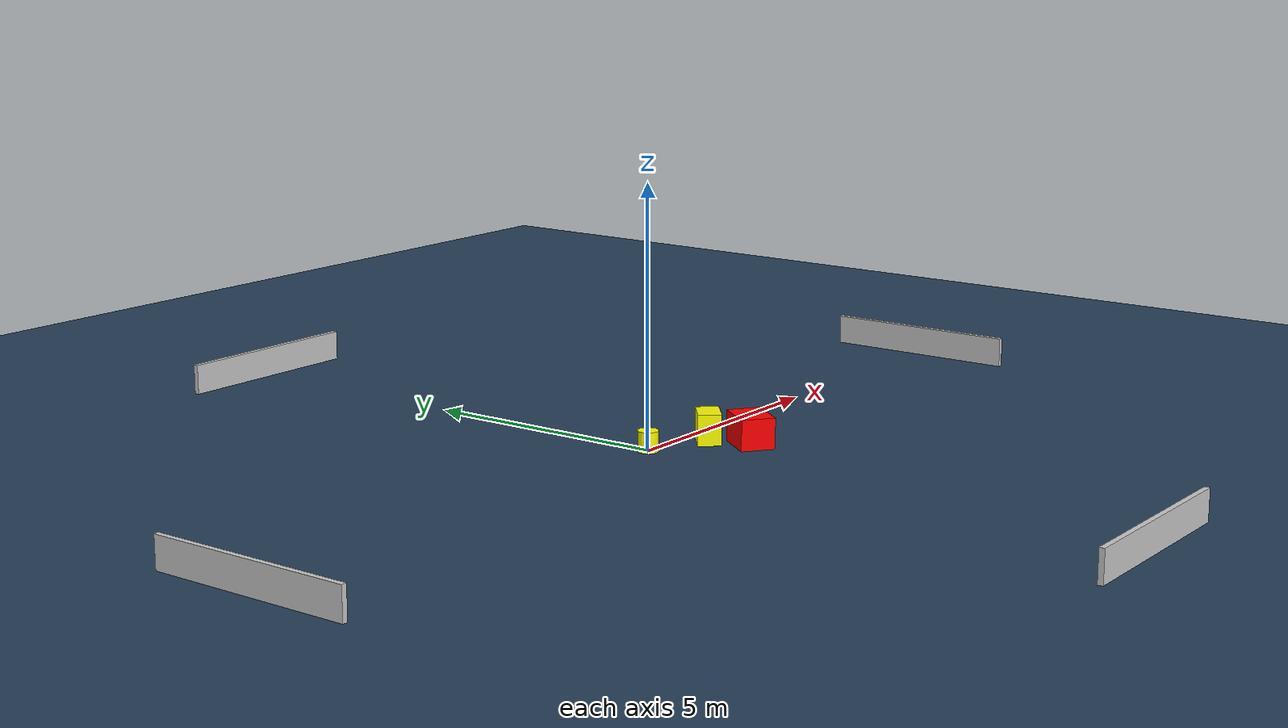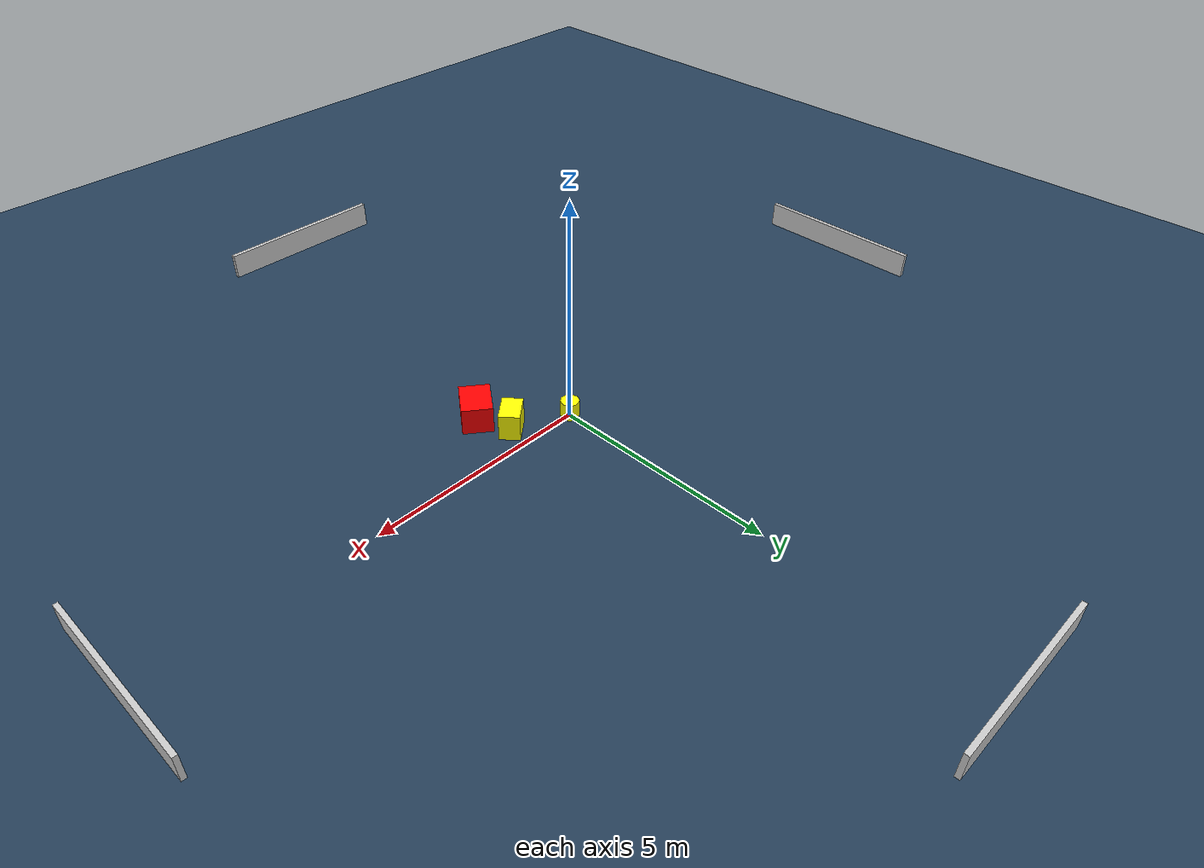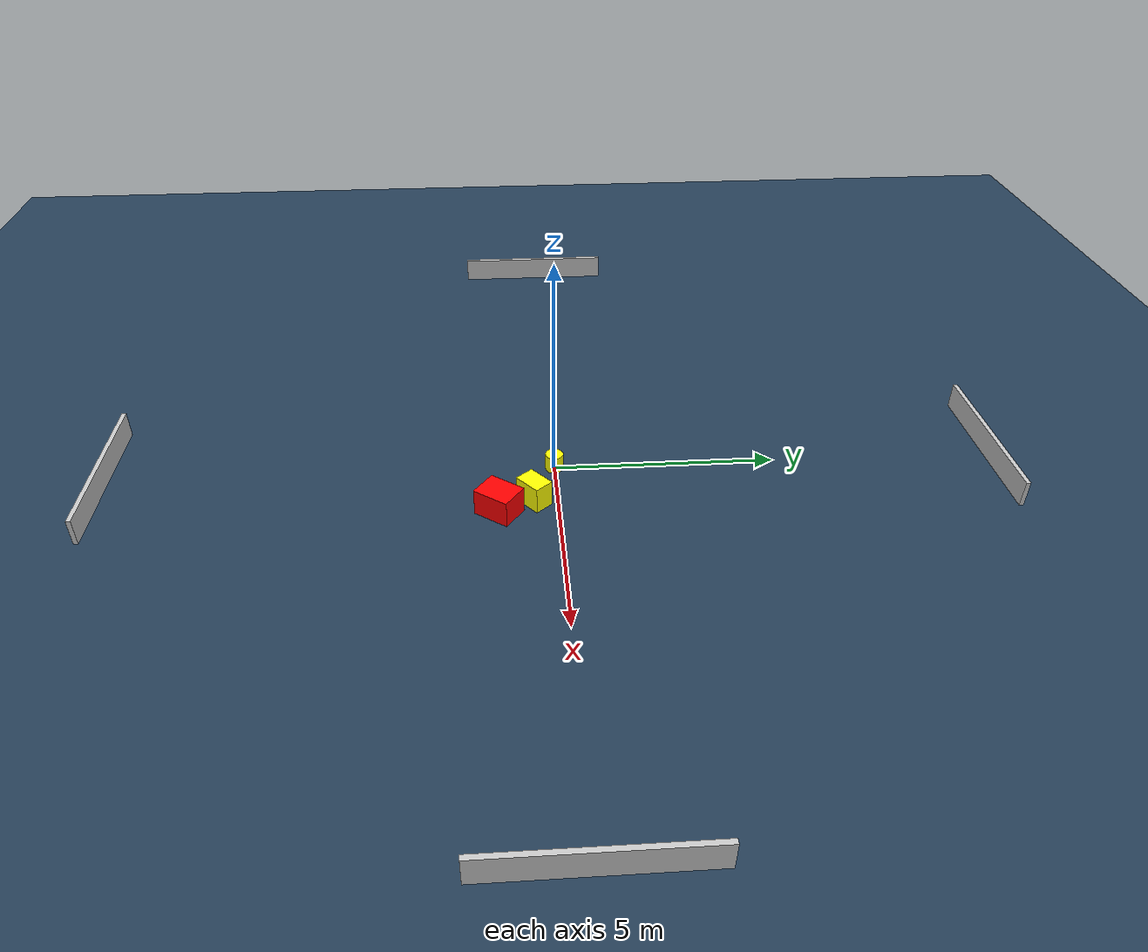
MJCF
<?xml version="1.0" ?>
<mujoco model="generated_environment">
  <option timestep="0.01" integrator="RK4" cone="elliptic"/>
  <default>
    <geom density="1"/>
  </default>
  <asset>
    <texture builtin="gradient" height="3072" name="skybox" rgb1="0.3 0.5 0.7" rgb2="0 0 0" type="skybox" width="512"/>
    <texture builtin="checker" height="300" name="groundplane" rgb1="0.2 0.3 0.4" rgb2="0.1 0.2 0.3" type="2d" width="300"/>
    <material name="groundplane" reflectance="0.2" texrepeat="5 5" texture="groundplane"/>
  </asset>
  <worldbody>
    <light dir="0 0 -1" directional="true" pos="0 0 1.5"/>
    <geom condim="3" friction="0.5 0.005 0.001" material="groundplane" name="floor" pos="0 0 0" size="0 0 0.05" type="plane"/>
    <body name="walls">
      <geom name="wall_1" condim="4" pos="-10.0 0.0 0.3" rgba="0.800000011920929 0.800000011920929 0.800000011920929 1.0" size="0.05 2.0 0.3" type="box"/>
      <geom name="wall_2" condim="4" pos="10.0 0.0 0.3" rgba="0.800000011920929 0.800000011920929 0.800000011920929 1.0" size="0.05 2.0 0.3" type="box"/>
      <geom name="wall_3" condim="4" pos="0.0 -10.0 0.3" rgba="0.800000011920929 0.800000011920929 0.800000011920929 1.0" size="2.0 0.05 0.3" type="box"/>
      <geom name="wall_4" condim="4" pos="0.0 10.0 0.3" rgba="0.800000011920929 0.800000011920929 0.800000011920929 1.0" size="2.0 0.05 0.3" type="box"/>
    </body>
    <body name="robot">
      <joint name="joint_x" type="slide" pos="0 0 0" axis="1 0 0"/>
      <joint name="joint_y" type="slide" pos="0 0 0" axis="0 1 0"/>
      <geom name="robot" type="cylinder" pos="0.0 0.0 0.2" size="0.2 0.2 0.0" mass="5.0" friction="1.0 0.005 0.0001" condim="4" rgba="1.0 1.0 0.0 1.0"/>
    </body>
    <body name="obstacle_1_movable">
      <geom name="obstacle_1_movable" condim="4" pos="1.2034582234035924 -0.5095722741088972 0.3" euler="0 0 40.259362745373735" friction="0.0 0.005 0.001" rgba="1.0 1.0 0.0 1.0" size="0.31992138038440926 0.22492158556039551 0.3" type="box" mass="0.1"/>
      <joint type="free"/>
    </body>
    <body name="obstacle_2_static">
      <geom name="obstacle_2_static" condim="4" pos="1.4963543587131396 -1.2721099030377017 0.3" euler="0 0 143.4701092042353" friction="0.0 0.005 0.001" rgba="1.0 0.0 0.0 1.0" size="0.33133285084104536 0.4221005464750125 0.3" type="box"/>
    </body>
  </worldbody>
  <actuator>
    <motor name="actuator_x" joint="joint_x" gear="1" ctrlrange="-1 1"/>
    <motor name="actuator_y" joint="joint_y" gear="1" ctrlrange="-1 1"/>
  </actuator>
</mujoco>
